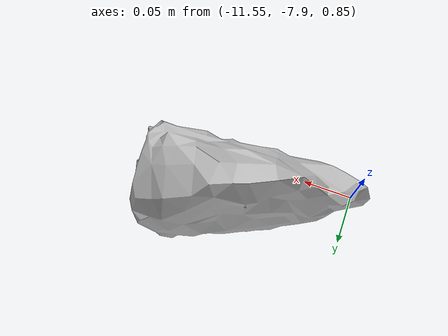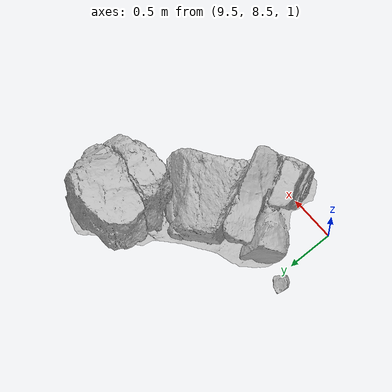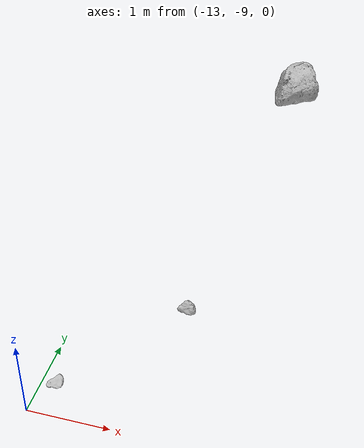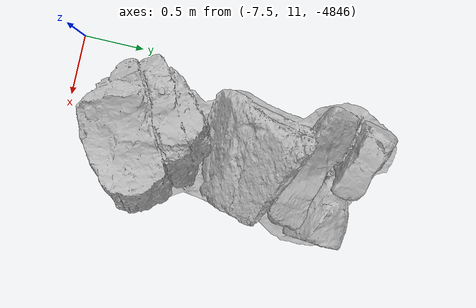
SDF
<sdf version="1.7">
 <world name="marsyard">
  <gravity>0 0 -9.81</gravity>
  <physics name="dart_physics" type="ignored">
   <max_step_size>0.003</max_step_size>
   <real_time_update_rate>333</real_time_update_rate>
   <real_time_factor>1.0</real_time_factor>
  </physics>
  <plugin filename="ignition-gazebo-physics-system" name="ignition::gazebo::systems::Physics"/>
  <plugin filename="ignition-gazebo-user-commands-system" name="ignition::gazebo::systems::UserCommands"/>
  <plugin filename="ignition-gazebo-scene-broadcaster-system" name="ignition::gazebo::systems::SceneBroadcaster"/>
  <plugin filename="ignition-gazebo-contact-system" name="ignition::gazebo::systems::Contact"/>
  <scene>
   <ambient>0.95 0.95 0.95 1</ambient>
   <background>0.70 0.70 0.70 1</background>
   <shadows>false</shadows>
  </scene>
  <light type="directional" name="sun">
   <cast_shadows>false</cast_shadows>
   <pose>0 0 30 0 0 0</pose>
   <diffuse>1 1 1 1</diffuse>
   <specular>0.15 0.15 0.15 1</specular>
   <direction>-0.35 0.1 -0.93</direction>
  </light>
  <model name="Rock_2">
   <static>true</static>
   <pose>-11.1081 -3.4285 1.2316 -0.0304 -0.0222 1.5826</pose>
   <link name="link">
    <visual name="visual">
     <geometry><mesh><uri>package://rock_generator/rocks_ws/rock_3/meshes/rock_3.stl</uri></mesh></geometry>
    </visual>
    <collision name="collision">
     <geometry><mesh><uri>package://rock_generator/rocks_ws/rock_3/meshes/rock_3.stl</uri></mesh></geometry>
    </collision>
   </link>
  </model>
  <model name="Rock_5">
   <static>true</static>
   <pose>-12.6582 -8.8378 0.4111 -0.0302 -0.1260 -2.6332</pose>
   <link name="link">
    <visual name="visual">
     <geometry><mesh><uri>package://rock_generator/rocks_ws/rock_7/meshes/rock_7.stl</uri></mesh></geometry>
    </visual>
    <collision name="collision">
     <geometry><mesh><uri>package://rock_generator/rocks_ws/rock_7/meshes/rock_7.stl</uri></mesh></geometry>
    </collision>
   </link>
  </model>
  <model name="Rock_6">
   <static>true</static>
   <pose>-11.4372 -7.8437 0.9236 2.0405 0.4522 -2.8420</pose>
   <link name="link">
    <visual name="visual">
     <geometry><mesh><uri>package://rock_generator/rocks_ws/rock_7/meshes/rock_7.stl</uri></mesh></geometry>
    </visual>
   </link>
  </model>
  <model name="Rock_9">
   <static>true</static>
   <pose>6.6749 1.8872 0.9160 0.1338 0.0573 2.9928</pose>
   <link name="link">
    <visual name="visual">
     <geometry><mesh><uri>package://rock_generator/rocks_ws/rock_9/meshes/rock_9.stl</uri></mesh></geometry>
    </visual>
   </link>
  </model>
  <model name="Rock_10">
   <static>true</static>
   <pose>9.4444 9.1820 0.9088 2.5590 -0.1656 -0.7695</pose>
   <link name="link">
    <visual name="visual">
     <geometry><mesh><uri>package://rock_generator/rocks_ws/rock_9/meshes/rock_9.stl</uri></mesh></geometry>
    </visual>
    <collision name="collision">
     <geometry><mesh><uri>package://rock_generator/rocks_ws/rock_9/meshes/rock_9.stl</uri></mesh></geometry>
    </collision>
   </link>
  </model>
  <model name="Rock_11">
   <static>true</static>
   <pose>-6.8352 12.3798 -4845.8500 0.0000 -0.0000 1.5763</pose>
   <link name="link">
    <visual name="visual">
     <geometry><mesh><uri>package://rock_generator/rocks_ws/rock_2/meshes/rock_2.stl</uri></mesh></geometry>
    </visual>
   </link>
  </model>
  <model name="Rock_12">
   <static>true</static>
   <pose>10.5986 9.4997 1.4100 0.0225 0.0672 -2.3039</pose>
   <link name="link">
    <visual name="visual">
     <geometry><mesh><uri>package://rock_generator/rocks_ws/rock_2/meshes/rock_2.stl</uri></mesh></geometry>
    </visual>
    <collision name="collision">
     <geometry><mesh><uri>package://rock_generator/rocks_ws/rock_2/meshes/rock_2.stl</uri></mesh></geometry>
    </collision>
   </link>
  </model>
  <model name="Rock_13">
   <static>true</static>
   <pose>-4.6685 5.2556 1.3572 -0.0468 -0.0183 3.0988</pose>
   <link name="link">
    <visual name="visual">
     <geometry><mesh><uri>package://rock_generator/rocks_ws/rock_7/meshes/rock_7.stl</uri></mesh></geometry>
    </visual>
    <collision name="collision">
     <geometry><mesh><uri>package://rock_generator/rocks_ws/rock_7/meshes/rock_7.stl</uri></mesh></geometry>
    </collision>
   </link>
  </model>
  <model name="Rock_15">
   <static>true</static>
   <pose>-16.4457 12.6470 -5856.0300 0.0000 -0.0000 2.6563</pose>
   <link name="link">
    <visual name="visual">
     <geometry><mesh><uri>package://rock_generator/rocks_ws/rock_1/meshes/rock_1.stl</uri></mesh></geometry>
    </visual>
   </link>
  </model>
 </world>
</sdf>
